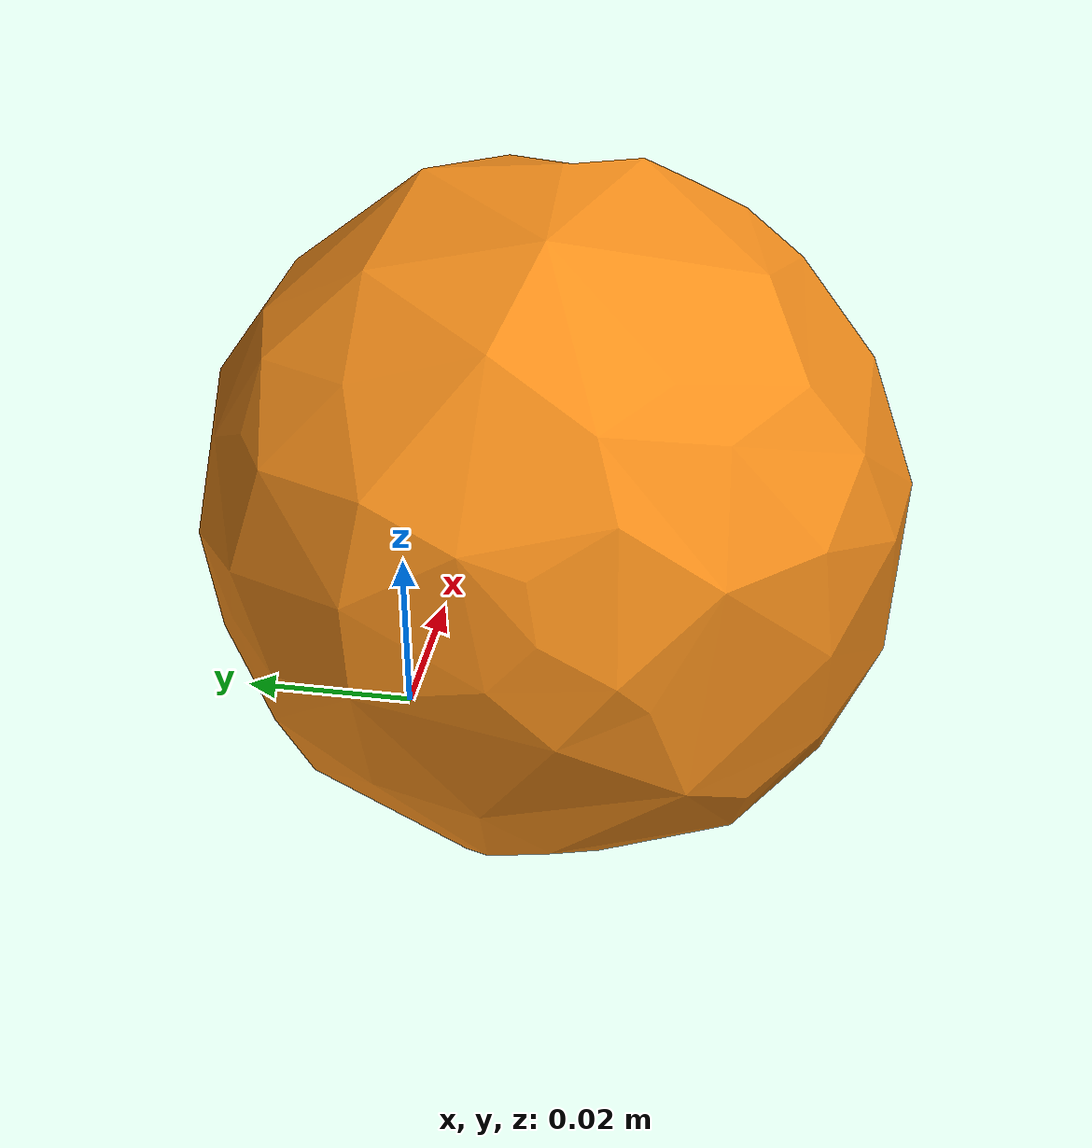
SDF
<?xml version='1.0'?>
<sdf version="1.4">
  <model name="017_orange">
    <static>false</static>
    <link name="link">
      <inertial>
        <pose>-0.007136249855027346 -0.018374164336606658 0.03356913301464902 -2.0344202858100755 0.33816950857515987 2.9747568652876395</pose>
        <mass>0.020328069223579923</mass>
        <inertia>
          <ixx>1.102282729730333e-05</ixx>
          <ixy>1.3855528597831755e-21</ixy>
          <ixz>-2.3105660271380833e-21</ixz>
          <iyy>1.0764750175787626e-05</iyy>
          <iyz>-5.499066249782335e-21</iyz>
          <izz>1.0710795374104934e-05</izz>
        </inertia>
      </inertial>
      <collision name="collision">
        <geometry>
          <mesh>
            <!-- Use a downsampled mesh for collisions -->
            <uri>model:///017_orange/017_orange_250_collision.stl</uri>
	        </mesh>
        </geometry>
        <surface>
      </surface>
      </collision>
      <visual name="visual">
        <geometry>
          <mesh>
            <uri>model:///017_orange/textured.obj</uri>
	        </mesh>
        </geometry>
        <material>
          <script>
            <uri>model:///017_orange/017_orange.material</uri>
            <name>017_orange</name>
          </script>
        </material>
      </visual>
    </link>
  </model>
</sdf>
